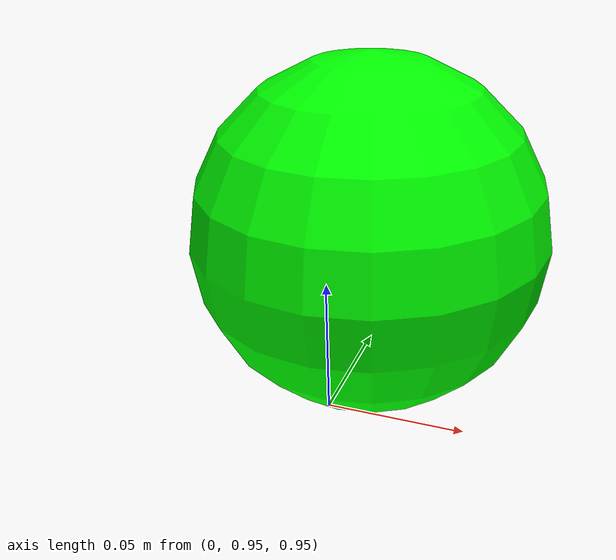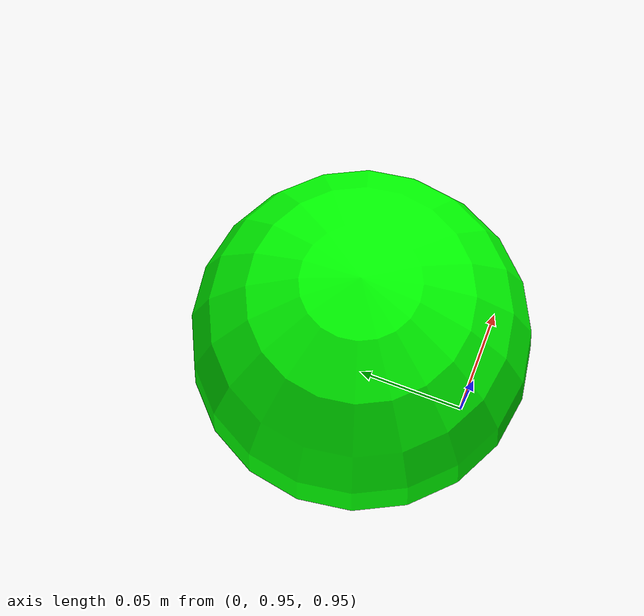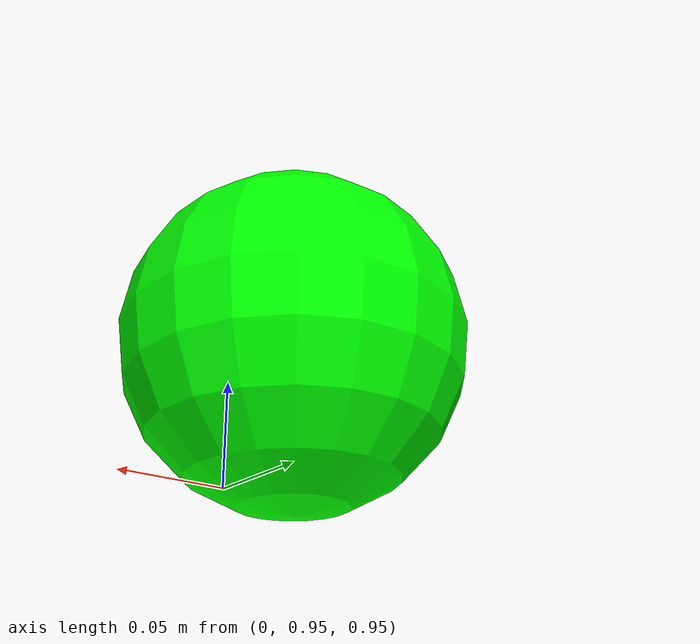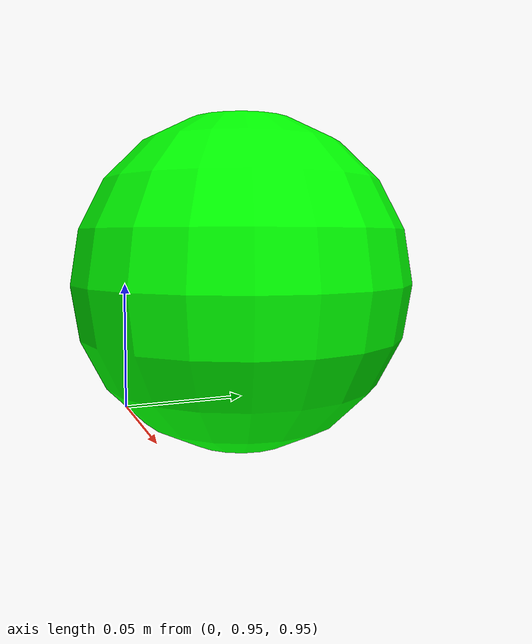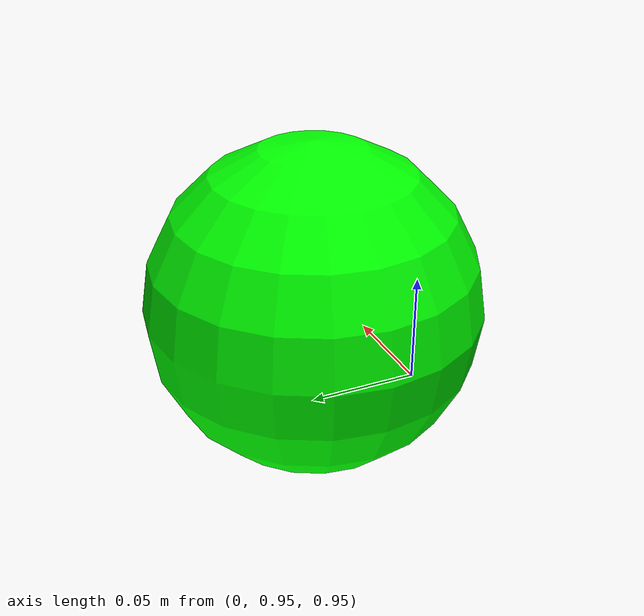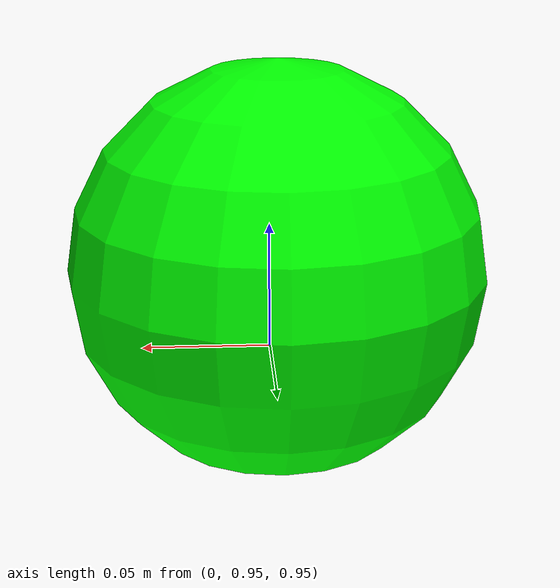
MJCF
<mujoco model="soccer_ball">
    <compiler angle="degree" inertiafromgeom="true"/>

    <asset>
        <!-- Define the material for the ball -->
        <material name="ball_mat" rgba="0 1 0 1" specular="0.5" shininess="0.5"/>
        <texture builtin="gradient" height="100" rgb1=".4 .5 .6" rgb2="0 0 0" type="skybox" width="100"/>
    </asset>
    <worldbody>
        <!-- Define the ball body -->
        <body name="ball" pos="0 1 1">
            <joint name="ball_joint" type="free"/>
            <geom name="ball_geom" contype="1" conaffinity="1" type="sphere" size="0.0714" material="ball_mat" solref="0.01 0.0003" solimp="0.99 0.99 0.1"/>
        </body>
    </worldbody>
</mujoco>

<!--
solref=x y , x = time constant y=damping ratio
solimp=d0 dwidth width midpoint power, d0=
-->
